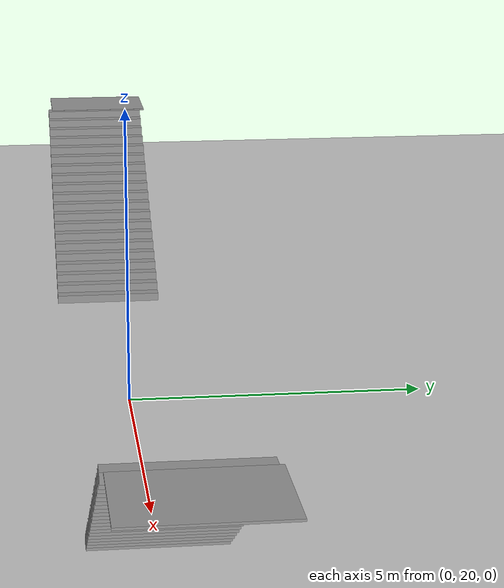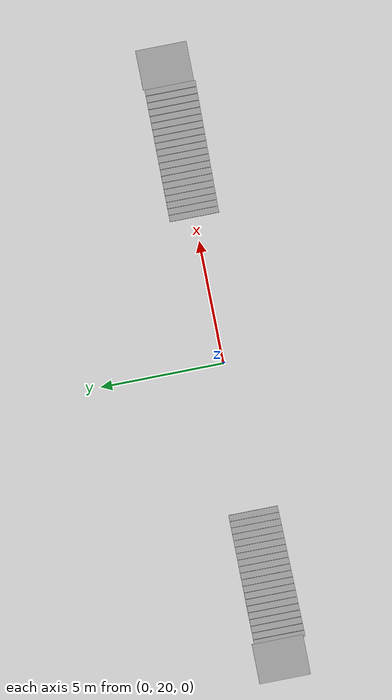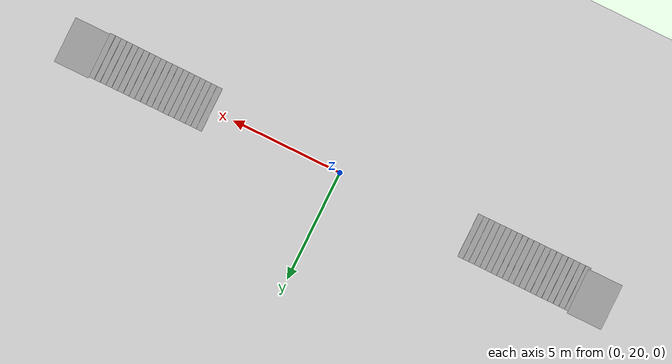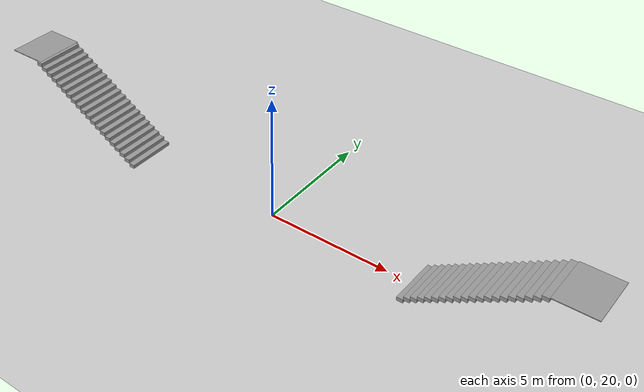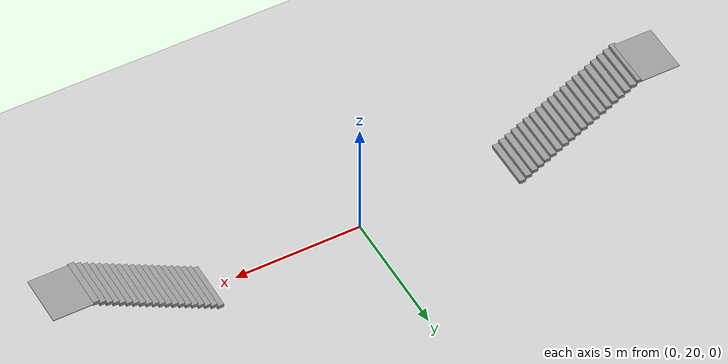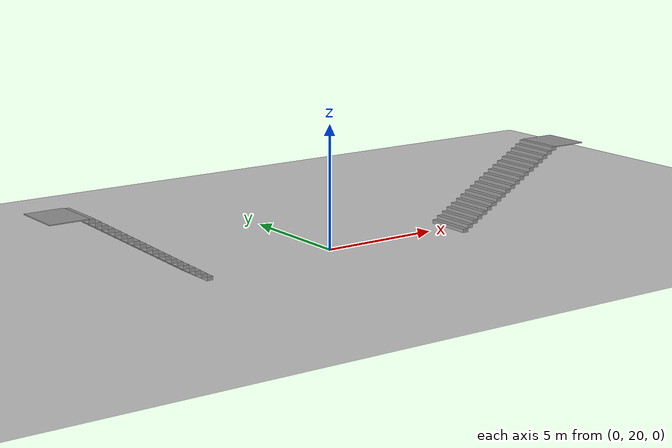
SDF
<sdf version="1.7">
 <world name="world">
  <gravity>0 0 -9.8</gravity>
  <physics name="default_physics" default="0" type="ode">
   <max_step_size>0.001</max_step_size>
   <real_time_factor>1</real_time_factor>
   <real_time_update_rate>1000</real_time_update_rate>
  </physics>
  <scene><ambient>0.6 0.6 0.6 1</ambient><background>0.4 0.4 0.4 1</background><shadows>0</shadows></scene>
  <light name="sun" type="directional">
   <pose>0 0 10 0 -0 0</pose>
   <diffuse>0.8 0.8 0.8 1</diffuse>
   <specular>0.2 0.2 0.2 1</specular>
   <attenuation>
    <range>1000</range>
    <constant>0.9</constant>
    <linear>0.01</linear>
    <quadratic>0.001</quadratic>
   </attenuation>
   <direction>-0.5 0.1 -0.9</direction>
   <spot><inner_angle>0</inner_angle><outer_angle>0</outer_angle><falloff>0</falloff></spot>
  </light>
  <model name="ground_plane">
   <static>1</static>
   <link name="link">
    <collision name="collision">
     <geometry><plane><normal>0 0 1</normal><size>100 100</size></plane></geometry>
     <surface><friction><ode><mu>100</mu><mu2>50</mu2></ode></friction></surface>
    </collision>
    <visual name="visual">
     <cast_shadows>0</cast_shadows>
     <geometry><plane><normal>0 0 1</normal><size>100 100</size></plane></geometry>
     <material>
      <script><uri>file://media/materials/scripts/gazebo.material</uri><name>Gazebo/Grey</name></script>
     </material>
    </visual>
   </link>
   <pose>0 0 -0.1 0 -0 0</pose>
  </model>
  <magnetic_field>6e-06 2.3e-05 -4.2e-05</magnetic_field>
  <atmosphere type="adiabatic"/>
  <spherical_coordinates>
   <surface_model>EARTH_WGS84</surface_model>
   <latitude_deg>0</latitude_deg>
   <longitude_deg>0</longitude_deg>
   <elevation>0</elevation>
   <heading_deg>0</heading_deg>
  </spherical_coordinates>
  <model name="aws_hospital_world_custom_stairs">
   <pose>-0.01111 10.5021 0 0 -0 0</pose>
   <link name="Stairs_3">
    <visual name="Stairs_3_Visual_0">
     <pose>6.11548 9.50208 0.075 0 -0 1.5708</pose>
     <geometry><box><size>2 0.25 0.15</size></box></geometry>
     <material>
      <script><uri>file://media/materials/scripts/gazebo.material</uri><name>Gazebo/Grey</name></script>
      <ambient>1 1 1 1</ambient>
     </material>
     <meta><layer>0</layer></meta>
    </visual>
    <collision name="Stairs_3_Collision_0">
     <geometry><box><size>2 0.25 0.15</size></box></geometry>
     <pose>6.11548 9.50208 0.075 0 -0 1.5708</pose>
    </collision>
    <visual name="Stairs_3_Visual_1">
     <pose>6.36548 9.50208 0.225 0 -0 1.5708</pose>
     <geometry><box><size>2 0.25 0.15</size></box></geometry>
     <material>
      <script><uri>file://media/materials/scripts/gazebo.material</uri><name>Gazebo/Grey</name></script>
      <ambient>1 1 1 1</ambient>
     </material>
     <meta><layer>0</layer></meta>
    </visual>
    <collision name="Stairs_3_Collision_1">
     <geometry><box><size>2 0.25 0.15</size></box></geometry>
     <pose>6.36548 9.50208 0.225 0 -0 1.5708</pose>
    </collision>
    <visual name="Stairs_3_Visual_2">
     <pose>6.61548 9.50208 0.375 0 -0 1.5708</pose>
     <geometry><box><size>2 0.25 0.15</size></box></geometry>
     <material>
      <script><uri>file://media/materials/scripts/gazebo.material</uri><name>Gazebo/Grey</name></script>
      <ambient>1 1 1 1</ambient>
     </material>
     <meta><layer>0</layer></meta>
    </visual>
    <collision name="Stairs_3_Collision_2">
     <geometry><box><size>2 0.25 0.15</size></box></geometry>
     <pose>6.61548 9.50208 0.375 0 -0 1.5708</pose>
    </collision>
    <visual name="Stairs_3_Visual_3">
     <pose>6.86548 9.50208 0.525 0 -0 1.5708</pose>
     <geometry><box><size>2 0.25 0.15</size></box></geometry>
     <material>
      <script><uri>file://media/materials/scripts/gazebo.material</uri><name>Gazebo/Grey</name></script>
      <ambient>1 1 1 1</ambient>
     </material>
     <meta><layer>0</layer></meta>
    </visual>
    <collision name="Stairs_3_Collision_3">
     <geometry><box><size>2 0.25 0.15</size></box></geometry>
     <pose>6.86548 9.50208 0.525 0 -0 1.5708</pose>
    </collision>
    <visual name="Stairs_3_Visual_4">
     <pose>7.11548 9.50208 0.675 0 -0 1.5708</pose>
     <geometry><box><size>2 0.25 0.15</size></box></geometry>
     <material>
      <script><uri>file://media/materials/scripts/gazebo.material</uri><name>Gazebo/Grey</name></script>
      <ambient>1 1 1 1</ambient>
     </material>
     <meta><layer>0</layer></meta>
    </visual>
    <collision name="Stairs_3_Collision_4">
     <geometry><box><size>2 0.25 0.15</size></box></geometry>
     <pose>7.11548 9.50208 0.675 0 -0 1.5708</pose>
    </collision>
    <visual name="Stairs_3_Visual_5">
     <pose>7.36548 9.50208 0.825 0 -0 1.5708</pose>
     <geometry><box><size>2 0.25 0.15</size></box></geometry>
     <material>
      <script><uri>file://media/materials/scripts/gazebo.material</uri><name>Gazebo/Grey</name></script>
      <ambient>1 1 1 1</ambient>
     </material>
     <meta><layer>0</layer></meta>
    </visual>
    <collision name="Stairs_3_Collision_5">
     <geometry><box><size>2 0.25 0.15</size></box></geometry>
     <pose>7.36548 9.50208 0.825 0 -0 1.5708</pose>
    </collision>
    <visual name="Stairs_3_Visual_6">
     <pose>7.61548 9.50208 0.975 0 -0 1.5708</pose>
     <geometry><box><size>2 0.25 0.15</size></box></geometry>
     <material>
      <script><uri>file://media/materials/scripts/gazebo.material</uri><name>Gazebo/Grey</name></script>
      <ambient>1 1 1 1</ambient>
     </material>
     <meta><layer>0</layer></meta>
    </visual>
    <collision name="Stairs_3_Collision_6">
     <geometry><box><size>2 0.25 0.15</size></box></geometry>
     <pose>7.61548 9.50208 0.975 0 -0 1.5708</pose>
    </collision>
    <visual name="Stairs_3_Visual_7">
     <pose>7.86548 9.50208 1.125 0 -0 1.5708</pose>
     <geometry><box><size>2 0.25 0.15</size></box></geometry>
     <material>
      <script><uri>file://media/materials/scripts/gazebo.material</uri><name>Gazebo/Grey</name></script>
      <ambient>1 1 1 1</ambient>
     </material>
     <meta><layer>0</layer></meta>
    </visual>
    <collision name="Stairs_3_Collision_7">
     <geometry><box><size>2 0.25 0.15</size></box></geometry>
     <pose>7.86548 9.50208 1.125 0 -0 1.5708</pose>
    </collision>
    <visual name="Stairs_3_Visual_8">
     <pose>8.11548 9.50208 1.275 0 -0 1.5708</pose>
     <geometry><box><size>2 0.25 0.15</size></box></geometry>
     <material>
      <script><uri>file://media/materials/scripts/gazebo.material</uri><name>Gazebo/Grey</name></script>
      <ambient>1 1 1 1</ambient>
     </material>
     <meta><layer>0</layer></meta>
    </visual>
    <collision name="Stairs_3_Collision_8">
     <geometry><box><size>2 0.25 0.15</size></box></geometry>
     <pose>8.11548 9.50208 1.275 0 -0 1.5708</pose>
    </collision>
    <visual name="Stairs_3_Visual_9">
     <pose>8.36548 9.50208 1.425 0 -0 1.5708</pose>
     <geometry><box><size>2 0.25 0.15</size></box></geometry>
     <material>
      <script><uri>file://media/materials/scripts/gazebo.material</uri><name>Gazebo/Grey</name></script>
      <ambient>1 1 1 1</ambient>
     </material>
     <meta><layer>0</layer></meta>
    </visual>
    <collision name="Stairs_3_Collision_9">
     <geometry><box><size>2 0.25 0.15</size></box></geometry>
     <pose>8.36548 9.50208 1.425 0 -0 1.5708</pose>
    </collision>
    <visual name="Stairs_3_Visual_10">
     <pose>8.61548 9.50208 1.575 0 -0 1.5708</pose>
     <geometry><box><size>2 0.25 0.15</size></box></geometry>
     <material>
      <script><uri>file://media/materials/scripts/gazebo.material</uri><name>Gazebo/Grey</name></script>
      <ambient>1 1 1 1</ambient>
     </material>
     <meta><layer>0</layer></meta>
    </visual>
    <collision name="Stairs_3_Collision_10">
     <geometry><box><size>2 0.25 0.15</size></box></geometry>
     <pose>8.61548 9.50208 1.575 0 -0 1.5708</pose>
    </collision>
    <visual name="Stairs_3_Visual_11">
     <pose>8.86548 9.50208 1.725 0 -0 1.5708</pose>
     <geometry><box><size>2 0.25 0.15</size></box></geometry>
     <material>
      <script><uri>file://media/materials/scripts/gazebo.material</uri><name>Gazebo/Grey</name></script>
      <ambient>1 1 1 1</ambient>
     </material>
     <meta><layer>0</layer></meta>
    </visual>
    <collision name="Stairs_3_Collision_11">
     <geometry><box><size>2 0.25 0.15</size></box></geometry>
     <pose>8.86548 9.50208 1.725 0 -0 1.5708</pose>
    </collision>
    <visual name="Stairs_3_Visual_12">
     <pose>9.11548 9.50208 1.875 0 -0 1.5708</pose>
     <geometry><box><size>2 0.25 0.15</size></box></geometry>
     <material>
      <script><uri>file://media/materials/scripts/gazebo.material</uri><name>Gazebo/Grey</name></script>
      <ambient>1 1 1 1</ambient>
     </material>
     <meta><layer>0</layer></meta>
    </visual>
    <collision name="Stairs_3_Collision_12">
     <geometry><box><size>2 0.25 0.15</size></box></geometry>
     <pose>9.11548 9.50208 1.875 0 -0 1.5708</pose>
    </collision>
    <visual name="Stairs_3_Visual_13">
     <pose>9.36548 9.50208 2.025 0 -0 1.5708</pose>
     <geometry><box><size>2 0.25 0.15</size></box></geometry>
     <material>
      <script><uri>file://media/materials/scripts/gazebo.material</uri><name>Gazebo/Grey</name></script>
      <ambient>1 1 1 1</ambient>
     </material>
     <meta><layer>0</layer></meta>
    </visual>
    <collision name="Stairs_3_Collision_13">
     <geometry><box><size>2 0.25 0.15</size></box></geometry>
     <pose>9.36548 9.50208 2.025 0 -0 1.5708</pose>
    </collision>
    <visual name="Stairs_3_Visual_14">
     <pose>9.61548 9.50208 2.175 0 -0 1.5708</pose>
     <geometry><box><size>2 0.25 0.15</size></box></geometry>
     <material>
      <script><uri>file://media/materials/scripts/gazebo.material</uri><name>Gazebo/Grey</name></script>
      <ambient>1 1 1 1</ambient>
     </material>
     <meta><layer>0</layer></meta>
    </visual>
    <collision name="Stairs_3_Collision_14">
     <geometry><box><size>2 0.25 0.15</size></box></geometry>
     <pose>9.61548 9.50208 2.175 0 -0 1.5708</pose>
    </collision>
    <visual name="Stairs_3_Visual_15">
     <pose>9.86548 9.50208 2.325 0 -0 1.5708</pose>
     <geometry><box><size>2 0.25 0.15</size></box></geometry>
     <material>
      <script><uri>file://media/materials/scripts/gazebo.material</uri><name>Gazebo/Grey</name></script>
      <ambient>1 1 1 1</ambient>
     </material>
     <meta><layer>0</layer></meta>
    </visual>
    <collision name="Stairs_3_Collision_15">
     <geometry><box><size>2 0.25 0.15</size></box></geometry>
     <pose>9.86548 9.50208 2.325 0 -0 1.5708</pose>
    </collision>
    <visual name="Stairs_3_Visual_16">
     <pose>10.1155 9.50208 2.475 0 -0 1.5708</pose>
     <geometry><box><size>2 0.25 0.15</size></box></geometry>
     <material>
      <script><uri>file://media/materials/scripts/gazebo.material</uri><name>Gazebo/Grey</name></script>
      <ambient>1 1 1 1</ambient>
     </material>
     <meta><layer>0</layer></meta>
    </visual>
    <collision name="Stairs_3_Collision_16">
     <geometry><box><size>2 0.25 0.15</size></box></geometry>
     <pose>10.1155 9.50208 2.475 0 -0 1.5708</pose>
    </collision>
    <visual name="Stairs_3_Visual_17">
     <pose>10.3655 9.50208 2.625 0 -0 1.5708</pose>
     <geometry><box><size>2 0.25 0.15</size></box></geometry>
     <material>
      <script><uri>file://media/materials/scripts/gazebo.material</uri><name>Gazebo/Grey</name></script>
      <ambient>1 1 1 1</ambient>
     </material>
     <meta><layer>0</layer></meta>
    </visual>
    <collision name="Stairs_3_Collision_17">
     <geometry><box><size>2 0.25 0.15</size></box></geometry>
     <pose>10.3655 9.50208 2.625 0 -0 1.5708</pose>
    </collision>
    <visual name="Stairs_3_Visual_18">
     <pose>10.6155 9.50208 2.775 0 -0 1.5708</pose>
     <geometry><box><size>2 0.25 0.15</size></box></geometry>
     <material>
      <script><uri>file://media/materials/scripts/gazebo.material</uri><name>Gazebo/Grey</name></script>
      <ambient>1 1 1 1</ambient>
     </material>
     <meta><layer>0</layer></meta>
    </visual>
    <collision name="Stairs_3_Collision_18">
     <geometry><box><size>2 0.25 0.15</size></box></geometry>
     <pose>10.6155 9.50208 2.775 0 -0 1.5708</pose>
    </collision>
    <visual name="Stairs_3_Visual_19">
     <pose>10.8655 9.50208 2.925 0 -0 1.5708</pose>
     <geometry><box><size>2 0.25 0.15</size></box></geometry>
     <material>
      <script><uri>file://media/materials/scripts/gazebo.material</uri><name>Gazebo/Grey</name></script>
      <ambient>1 1 1 1</ambient>
     </material>
     <meta><layer>0</layer></meta>
    </visual>
    <collision name="Stairs_3_Collision_19">
     <geometry><box><size>2 0.25 0.15</size></box></geometry>
     <pose>10.8655 9.50208 2.925 0 -0 1.5708</pose>
    </collision>
   </link>
   <link name="Stairs_5">
    <visual name="Stairs_5_Visual_0">
     <pose>-6.11548 9.4651 0.075 0 0 -1.5708</pose>
     <geometry><box><size>2 0.25 0.15</size></box></geometry>
     <material>
      <script><uri>file://media/materials/scripts/gazebo.material</uri><name>Gazebo/Grey</name></script>
      <ambient>1 1 1 1</ambient>
     </material>
     <meta><layer>0</layer></meta>
    </visual>
    <collision name="Stairs_5_Collision_0">
     <geometry><box><size>2 0.25 0.15</size></box></geometry>
     <pose>-6.11548 9.4651 0.075 0 0 -1.5708</pose>
    </collision>
    <visual name="Stairs_5_Visual_1">
     <pose>-6.36548 9.4651 0.225 0 0 -1.5708</pose>
     <geometry><box><size>2 0.25 0.15</size></box></geometry>
     <material>
      <script><uri>file://media/materials/scripts/gazebo.material</uri><name>Gazebo/Grey</name></script>
      <ambient>1 1 1 1</ambient>
     </material>
     <meta><layer>0</layer></meta>
    </visual>
    <collision name="Stairs_5_Collision_1">
     <geometry><box><size>2 0.25 0.15</size></box></geometry>
     <pose>-6.36548 9.4651 0.225 0 0 -1.5708</pose>
    </collision>
    <visual name="Stairs_5_Visual_2">
     <pose>-6.61548 9.4651 0.375 0 0 -1.5708</pose>
     <geometry><box><size>2 0.25 0.15</size></box></geometry>
     <material>
      <script><uri>file://media/materials/scripts/gazebo.material</uri><name>Gazebo/Grey</name></script>
      <ambient>1 1 1 1</ambient>
     </material>
     <meta><layer>0</layer></meta>
    </visual>
    <collision name="Stairs_5_Collision_2">
     <geometry><box><size>2 0.25 0.15</size></box></geometry>
     <pose>-6.61548 9.4651 0.375 0 0 -1.5708</pose>
    </collision>
    <visual name="Stairs_5_Visual_3">
     <pose>-6.86548 9.4651 0.525 0 0 -1.5708</pose>
     <geometry><box><size>2 0.25 0.15</size></box></geometry>
     <material>
      <script><uri>file://media/materials/scripts/gazebo.material</uri><name>Gazebo/Grey</name></script>
      <ambient>1 1 1 1</ambient>
     </material>
     <meta><layer>0</layer></meta>
    </visual>
    <collision name="Stairs_5_Collision_3">
     <geometry><box><size>2 0.25 0.15</size></box></geometry>
     <pose>-6.86548 9.4651 0.525 0 0 -1.5708</pose>
    </collision>
    <visual name="Stairs_5_Visual_4">
     <pose>-7.11548 9.4651 0.675 0 0 -1.5708</pose>
     <geometry><box><size>2 0.25 0.15</size></box></geometry>
     <material>
      <script><uri>file://media/materials/scripts/gazebo.material</uri><name>Gazebo/Grey</name></script>
      <ambient>1 1 1 1</ambient>
     </material>
     <meta><layer>0</layer></meta>
    </visual>
    <collision name="Stairs_5_Collision_4">
     <geometry><box><size>2 0.25 0.15</size></box></geometry>
     <pose>-7.11548 9.4651 0.675 0 0 -1.5708</pose>
    </collision>
    <visual name="Stairs_5_Visual_5">
     <pose>-7.36548 9.4651 0.825 0 0 -1.5708</pose>
     <geometry><box><size>2 0.25 0.15</size></box></geometry>
     <material>
      <script><uri>file://media/materials/scripts/gazebo.material</uri><name>Gazebo/Grey</name></script>
      <ambient>1 1 1 1</ambient>
     </material>
     <meta><layer>0</layer></meta>
    </visual>
    <collision name="Stairs_5_Collision_5">
     <geometry><box><size>2 0.25 0.15</size></box></geometry>
     <pose>-7.36548 9.4651 0.825 0 0 -1.5708</pose>
    </collision>
    <visual name="Stairs_5_Visual_6">
     <pose>-7.61548 9.4651 0.975 0 0 -1.5708</pose>
     <geometry><box><size>2 0.25 0.15</size></box></geometry>
     <material>
      <script><uri>file://media/materials/scripts/gazebo.material</uri><name>Gazebo/Grey</name></script>
      <ambient>1 1 1 1</ambient>
     </material>
     <meta><layer>0</layer></meta>
    </visual>
    <collision name="Stairs_5_Collision_6">
     <geometry><box><size>2 0.25 0.15</size></box></geometry>
     <pose>-7.61548 9.4651 0.975 0 0 -1.5708</pose>
    </collision>
    <visual name="Stairs_5_Visual_7">
     <pose>-7.86548 9.4651 1.125 0 0 -1.5708</pose>
     <geometry><box><size>2 0.25 0.15</size></box></geometry>
     <material>
      <script><uri>file://media/materials/scripts/gazebo.material</uri><name>Gazebo/Grey</name></script>
      <ambient>1 1 1 1</ambient>
     </material>
     <meta><layer>0</layer></meta>
    </visual>
    <collision name="Stairs_5_Collision_7">
     <geometry><box><size>2 0.25 0.15</size></box></geometry>
     <pose>-7.86548 9.4651 1.125 0 0 -1.5708</pose>
    </collision>
    <visual name="Stairs_5_Visual_8">
     <pose>-8.11548 9.4651 1.275 0 0 -1.5708</pose>
     <geometry><box><size>2 0.25 0.15</size></box></geometry>
     <material>
      <script><uri>file://media/materials/scripts/gazebo.material</uri><name>Gazebo/Grey</name></script>
      <ambient>1 1 1 1</ambient>
     </material>
     <meta><layer>0</layer></meta>
    </visual>
    <collision name="Stairs_5_Collision_8">
     <geometry><box><size>2 0.25 0.15</size></box></geometry>
     <pose>-8.11548 9.4651 1.275 0 0 -1.5708</pose>
    </collision>
    <visual name="Stairs_5_Visual_9">
     <pose>-8.36548 9.4651 1.425 0 0 -1.5708</pose>
     <geometry><box><size>2 0.25 0.15</size></box></geometry>
     <material>
      <script><uri>file://media/materials/scripts/gazebo.material</uri><name>Gazebo/Grey</name></script>
      <ambient>1 1 1 1</ambient>
     </material>
     <meta><layer>0</layer></meta>
    </visual>
    <collision name="Stairs_5_Collision_9">
     <geometry><box><size>2 0.25 0.15</size></box></geometry>
     <pose>-8.36548 9.4651 1.425 0 0 -1.5708</pose>
    </collision>
    <visual name="Stairs_5_Visual_10">
     <pose>-8.61548 9.4651 1.575 0 0 -1.5708</pose>
     <geometry><box><size>2 0.25 0.15</size></box></geometry>
     <material>
      <script><uri>file://media/materials/scripts/gazebo.material</uri><name>Gazebo/Grey</name></script>
      <ambient>1 1 1 1</ambient>
     </material>
     <meta><layer>0</layer></meta>
    </visual>
    <collision name="Stairs_5_Collision_10">
     <geometry><box><size>2 0.25 0.15</size></box></geometry>
     <pose>-8.61548 9.4651 1.575 0 0 -1.5708</pose>
    </collision>
    <visual name="Stairs_5_Visual_11">
     <pose>-8.86548 9.4651 1.725 0 0 -1.5708</pose>
     <geometry><box><size>2 0.25 0.15</size></box></geometry>
     <material>
      <script><uri>file://media/materials/scripts/gazebo.material</uri><name>Gazebo/Grey</name></script>
      <ambient>1 1 1 1</ambient>
     </material>
     <meta><layer>0</layer></meta>
    </visual>
    <collision name="Stairs_5_Collision_11">
     <geometry><box><size>2 0.25 0.15</size></box></geometry>
     <pose>-8.86548 9.4651 1.725 0 0 -1.5708</pose>
    </collision>
    <visual name="Stairs_5_Visual_12">
     <pose>-9.11548 9.4651 1.875 0 0 -1.5708</pose>
     <geometry><box><size>2 0.25 0.15</size></box></geometry>
     <material>
      <script><uri>file://media/materials/scripts/gazebo.material</uri><name>Gazebo/Grey</name></script>
      <ambient>1 1 1 1</ambient>
     </material>
     <meta><layer>0</layer></meta>
    </visual>
    <collision name="Stairs_5_Collision_12">
     <geometry><box><size>2 0.25 0.15</size></box></geometry>
     <pose>-9.11548 9.4651 1.875 0 0 -1.5708</pose>
    </collision>
    <visual name="Stairs_5_Visual_13">
     <pose>-9.36548 9.4651 2.025 0 0 -1.5708</pose>
     <geometry><box><size>2 0.25 0.15</size></box></geometry>
     <material>
      <script><uri>file://media/materials/scripts/gazebo.material</uri><name>Gazebo/Grey</name></script>
      <ambient>1 1 1 1</ambient>
     </material>
     <meta><layer>0</layer></meta>
    </visual>
    <collision name="Stairs_5_Collision_13">
     <geometry><box><size>2 0.25 0.15</size></box></geometry>
     <pose>-9.36548 9.4651 2.025 0 0 -1.5708</pose>
    </collision>
    <visual name="Stairs_5_Visual_14">
     <pose>-9.61548 9.4651 2.175 0 0 -1.5708</pose>
     <geometry><box><size>2 0.25 0.15</size></box></geometry>
     <material>
      <script><uri>file://media/materials/scripts/gazebo.material</uri><name>Gazebo/Grey</name></script>
      <ambient>1 1 1 1</ambient>
     </material>
     <meta><layer>0</layer></meta>
    </visual>
    <collision name="Stairs_5_Collision_14">
     <geometry><box><size>2 0.25 0.15</size></box></geometry>
     <pose>-9.61548 9.4651 2.175 0 0 -1.5708</pose>
    </collision>
    <visual name="Stairs_5_Visual_15">
     <pose>-9.86548 9.4651 2.325 0 0 -1.5708</pose>
     <geometry><box><size>2 0.25 0.15</size></box></geometry>
     <material>
      <script><uri>file://media/materials/scripts/gazebo.material</uri><name>Gazebo/Grey</name></script>
      <ambient>1 1 1 1</ambient>
     </material>
     <meta><layer>0</layer></meta>
    </visual>
    <collision name="Stairs_5_Collision_15">
     <geometry><box><size>2 0.25 0.15</size></box></geometry>
     <pose>-9.86548 9.4651 2.325 0 0 -1.5708</pose>
    </collision>
    <visual name="Stairs_5_Visual_16">
     <pose>-10.1155 9.4651 2.475 0 0 -1.5708</pose>
     <geometry><box><size>2 0.25 0.15</size></box></geometry>
     <material>
      <script><uri>file://media/materials/scripts/gazebo.material</uri><name>Gazebo/Grey</name></script>
      <ambient>1 1 1 1</ambient>
     </material>
     <meta><layer>0</layer></meta>
    </visual>
    <collision name="Stairs_5_Collision_16">
     <geometry><box><size>2 0.25 0.15</size></box></geometry>
     <pose>-10.1155 9.4651 2.475 0 0 -1.5708</pose>
    </collision>
    <visual name="Stairs_5_Visual_17">
     <pose>-10.3655 9.4651 2.625 0 0 -1.5708</pose>
     <geometry><box><size>2 0.25 0.15</size></box></geometry>
     <material>
      <script><uri>file://media/materials/scripts/gazebo.material</uri><name>Gazebo/Grey</name></script>
      <ambient>1 1 1 1</ambient>
     </material>
     <meta><layer>0</layer></meta>
    </visual>
    <collision name="Stairs_5_Collision_17">
     <geometry><box><size>2 0.25 0.15</size></box></geometry>
     <pose>-10.3655 9.4651 2.625 0 0 -1.5708</pose>
    </collision>
    <visual name="Stairs_5_Visual_18">
     <pose>-10.6155 9.4651 2.775 0 0 -1.5708</pose>
     <geometry><box><size>2 0.25 0.15</size></box></geometry>
     <material>
      <script><uri>file://media/materials/scripts/gazebo.material</uri><name>Gazebo/Grey</name></script>
      <ambient>1 1 1 1</ambient>
     </material>
     <meta><layer>0</layer></meta>
    </visual>
    <collision name="Stairs_5_Collision_18">
     <geometry><box><size>2 0.25 0.15</size></box></geometry>
     <pose>-10.6155 9.4651 2.775 0 0 -1.5708</pose>
    </collision>
    <visual name="Stairs_5_Visual_19">
     <pose>-10.8655 9.4651 2.925 0 0 -1.5708</pose>
     <geometry><box><size>2 0.25 0.15</size></box></geometry>
     <material>
      <script><uri>file://media/materials/scripts/gazebo.material</uri><name>Gazebo/Grey</name></script>
      <ambient>1 1 1 1</ambient>
     </material>
     <meta><layer>0</layer></meta>
    </visual>
    <collision name="Stairs_5_Collision_19">
     <geometry><box><size>2 0.25 0.15</size></box></geometry>
     <pose>-10.8655 9.4651 2.925 0 0 -1.5708</pose>
    </collision>
   </link>
   <static>1</static>
  </model>
  <model name="unit_box_clone">
   <pose>-11.6817 20.0506 2.985 9.6e-05 -0 0.001976</pose>
   <link name="link">
    <inertial>
     <mass>1</mass>
     <inertia>
      <ixx>0.166667</ixx>
      <ixy>0</ixy>
      <ixz>0</ixz>
      <iyy>0.166667</iyy>
      <iyz>0</iyz>
      <izz>0.166667</izz>
     </inertia>
    </inertial>
    <collision name="collision"><geometry><box><size>1.56145 2.01104 0.031322</size></box></geometry></collision>
    <visual name="visual">
     <geometry><box><size>1.56145 2.01104 0.031322</size></box></geometry>
     <material>
      <script><name>Gazebo/Grey</name><uri>file://media/materials/scripts/gazebo.material</uri></script>
     </material>
    </visual>
   </link>
  </model>
  <model name="unit_box_clone_clone">
   <pose>11.7498 20.0593 2.985 9.6e-05 -0 0.001976</pose>
   <link name="link">
    <inertial>
     <mass>1</mass>
     <inertia>
      <ixx>0.166667</ixx>
      <ixy>0</ixy>
      <ixz>0</ixz>
      <iyy>0.166667</iyy>
      <iyz>0</iyz>
      <izz>0.166667</izz>
     </inertia>
    </inertial>
    <collision name="collision"><geometry><box><size>1.56145 2.01104 0.031322</size></box></geometry></collision>
    <visual name="visual">
     <geometry><box><size>1.56145 2.01104 0.031322</size></box></geometry>
     <material>
      <script><name>Gazebo/Grey</name><uri>file://media/materials/scripts/gazebo.material</uri></script>
     </material>
    </visual>
   </link>
  </model>
 </world>
</sdf>
